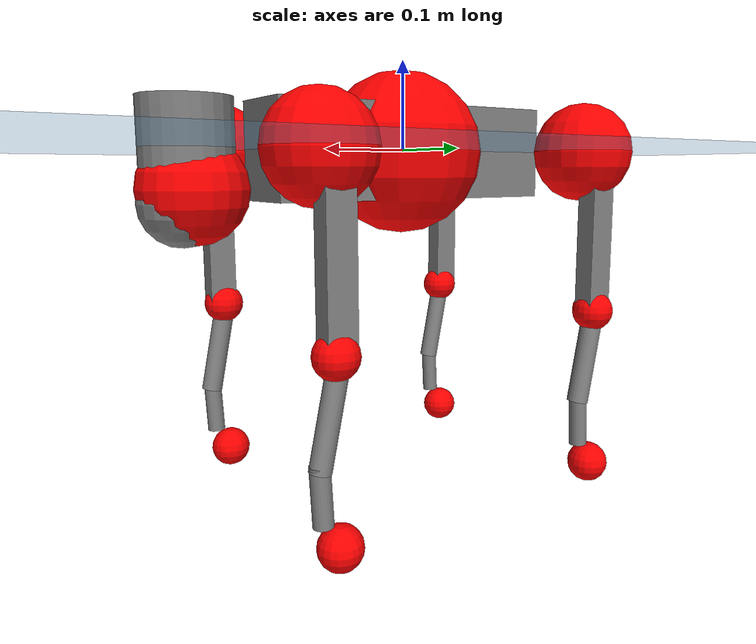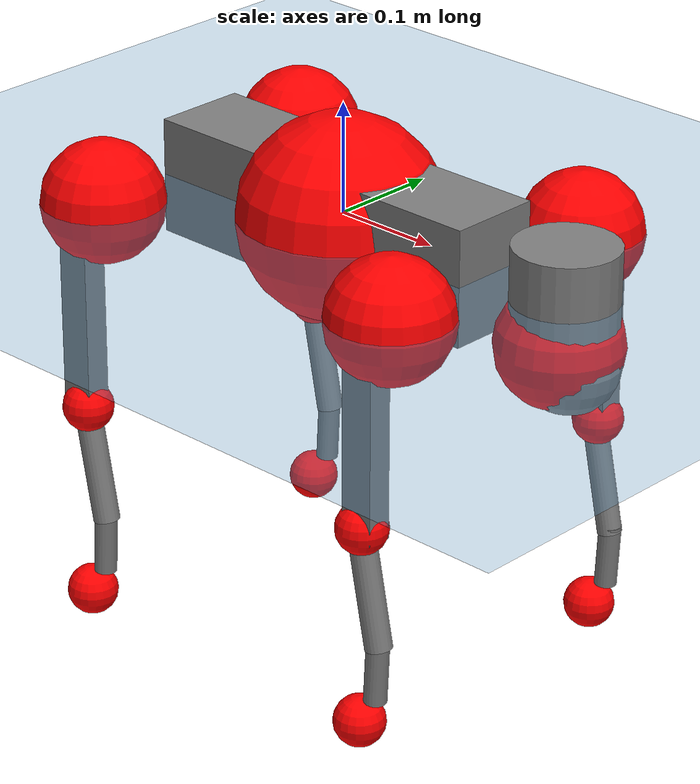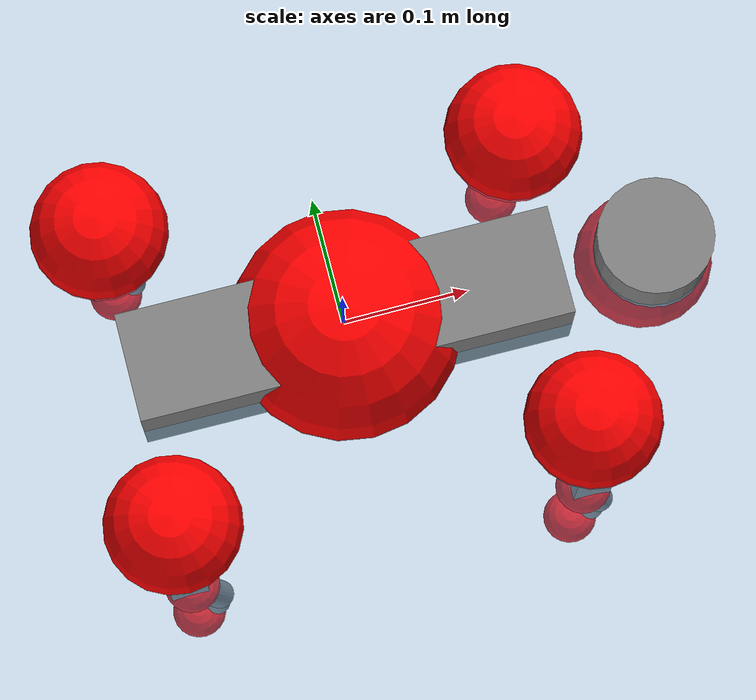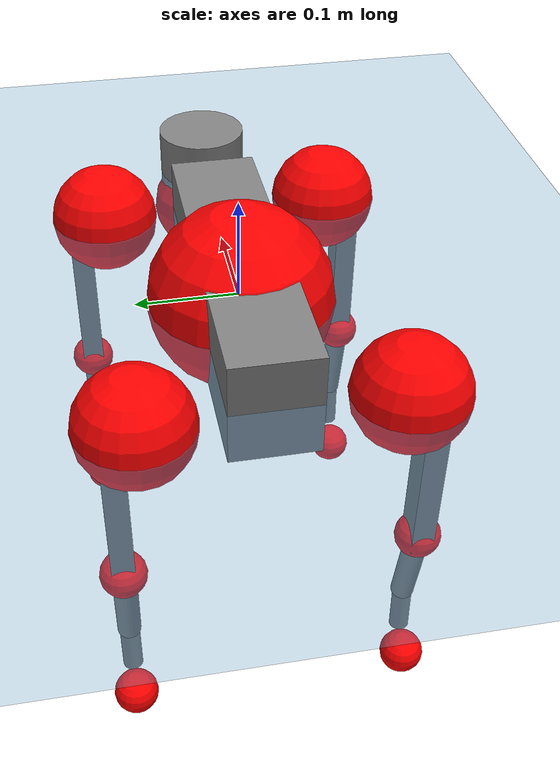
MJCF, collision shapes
<mujoco model="go2">
  <compiler angle="radian" assetdir="assets" balanceinertia="true" inertiafromgeom="false"/>

  <option timestep="0.005" density="1.2" viscosity="2e-05"/>

  <size nkey="1"/>

  <visual>
    <quality shadowsize="8192"/>
    <map shadowclip="0.5"/>
  </visual>

  <default>
    <default class="/">
      <geom contype="0" conaffinity="0" group="1" solref="-1000 -80"/>
      <site size="0.01 0.005 0.005" group="5"/>
      <general forcelimited="true" biastype="affine" gainprm="20" biasprm="0 -20 -0.5"/>
      <default class="go2">
        <joint armature="0.01" damping="0.01" frictionloss="0.2"/>
        <geom condim="1" margin="0.001"/>
        <default class="visual">
          <geom type="mesh" group="2"/>
        </default>
        <default class="collision">
          <geom group="3"/>
          <default class="foot">
            <geom size="0.022 0 0" condim="6" priority="1" friction="0.8 0.02 0.01" solimp="0.015 1 0.022"/>
          </default>
        </default>
        <default class="reward_collision_sphere">
          <geom group="5" rgba="1 0 0 1"/>
        </default>
      </default>
    </default>
  </default>

  <asset>
    <texture type="skybox" colorspace="auto" name="//unnamed_texture_0" builtin="gradient" rgb1="0.95 0.95 0.95" rgb2="0.95 0.95 0.95" width="100" height="600"/>
    <texture type="2d" colorspace="auto" name="texplane" builtin="checker" rgb1="0.345 0.575 0.748" rgb2="0.345 0.575 0.748" markrgb="1 1 1" width="512" height="512"/>
    <material name="MatPlane" class="/" texture="texplane" texuniform="true" texrepeat="2 2" specular="0.9"/>
    <material name="metal" class="/" rgba="0.9 0.95 0.95 1"/>
    <material name="black" class="/" rgba="0 0 0 1"/>
    <material name="white" class="/"/>
    <material name="gray" class="/" rgba="0.671705 0.692426 0.77427 1"/>
    <mesh name="base_0" class="/" file="base_0.obj"/>
    <mesh name="base_1" class="/" file="base_1.obj"/>
    <mesh name="base_2" class="/" file="base_2.obj"/>
    <mesh name="base_3" class="/" file="base_3.obj"/>
    <mesh name="base_4" class="/" file="base_4.obj"/>
    <mesh name="hip_0" class="/" file="hip_0.obj"/>
    <mesh name="hip_1" class="/" file="hip_1.obj"/>
    <mesh name="thigh_0" class="/" file="thigh_0.obj"/>
    <mesh name="thigh_1" class="/" file="thigh_1.obj"/>
    <mesh name="thigh_mirror_0" class="/" file="thigh_mirror_0.obj"/>
    <mesh name="thigh_mirror_1" class="/" file="thigh_mirror_1.obj"/>
    <mesh name="calf_0" class="/" file="calf_0.obj"/>
    <mesh name="calf_1" class="/" file="calf_1.obj"/>
    <mesh name="calf_mirror_0" class="/" file="calf_mirror_0.obj"/>
    <mesh name="calf_mirror_1" class="/" file="calf_mirror_1.obj"/>
    <mesh name="foot" class="/" file="foot.obj"/>
  </asset>

  <worldbody>
    <geom name="floor" class="/" size="100 100 0.125" type="plane" group="0" material="MatPlane"/>
    <light name="toplight_shadow" class="/" pos="0 0 5" dir="0.0990148 0.0990148 -0.990148" type="directional" ambient="0.04 0.04 0.04" diffuse="0.55 0.55 0.55" specular="0.12 0.12 0.12"/>
    <light name="toplight_fill" class="/" pos="0 0 5" dir="0.0990148 0.0990148 -0.990148" type="directional" castshadow="false" ambient="0.04 0.04 0.04" diffuse="0.3 0.3 0.3" specular="0.08 0.08 0.08"/>
    <body name="trunk" childclass="go2" pos="0.000696274 -0.00236153 -0.0022806" quat="0.999999 -1.94834e-05 0.000934014 -0.00070387">
      <inertial pos="0.0154785 0.000560243 -0.00262166" quat="-0.0121514 0.716962 -0.00681485 0.696973" mass="5.46938" diaginertia="0.0543198 0.104624 0.012159"/>
      <joint name="//unnamed_joint_0" type="free" armature="0" damping="0" frictionloss="0"/>
      <geom name="//unnamed_geom_1" class="visual" material="black" mesh="base_0"/>
      <geom name="//unnamed_geom_2" class="visual" material="black" mesh="base_1"/>
      <geom name="//unnamed_geom_3" class="visual" material="black" mesh="base_2"/>
      <geom name="//unnamed_geom_4" class="visual" material="white" mesh="base_3"/>
      <geom name="//unnamed_geom_5" class="visual" material="gray" mesh="base_4"/>
      <geom name="trunk_1" class="collision" size="0.172431 0.0428558 0.052252" type="box"/>
      <geom name="trunk_2" class="collision" size="0.0458351 0.0412516" pos="0.248354 0 0.00865998" type="cylinder"/>
      <geom name="trunk_3" class="collision" size="0.043085" pos="0.255325 0 -0.0519599"/>
      <geom name="//unnamed_geom_9" class="reward_collision_sphere" size="0.0916701"/>
      <geom name="//unnamed_geom_10" class="reward_collision_sphere" size="0.0550021" pos="0.243997 0 -0.0389699"/>
      <site name="imu" pos="-0.0208302 -0.00437817 0.0322283" size="0.00916701"/>
      <camera name="track" pos="0 -2.02537 0" quat="0.707107 0.707107 0 0" mode="trackcom"/>
      <camera name="ego_camera" pos="0.271882 0 0.0389699" quat="-0.5 -0.5 0.5 0.5"/>
      <body name="FL_hip" pos="0.16649 0.0457618 -0.00017856" quat="1 3.11306e-05 -1.23593e-05 3.08125e-05">
        <inertial pos="-0.00427049 0.000716085 -0.00123839" quat="0.495157 0.502282 0.509356 0.49304" mass="0.52465" diaginertia="0.000455939 0.00062266 0.000240437"/>
        <joint name="FL_hip_joint" pos="0 0 0" axis="0.99991 -0.00855488 -0.0103372" range="-1.10592 1.03183" armature="0.00958589" damping="0.0141187" frictionloss="0.18614"/>
        <geom name="//unnamed_geom_11" class="visual" material="metal" mesh="hip_0"/>
        <geom name="//unnamed_geom_12" class="visual" material="gray" mesh="hip_1"/>
        <geom name="//unnamed_geom_13" class="collision" size="0.0421683 0.018334" pos="0 0.081015 0" quat="0.707107 0.707107 0 0" type="cylinder"/>
        <geom name="//unnamed_geom_14" class="reward_collision_sphere" size="0.0550021" pos="0 0.0708881 0"/>
        <body name="FL_thigh" pos="0.00130975 0.0992705 0.000422663" quat="1 -0.000312865 0.000143102 0.000186306">
          <inertial pos="-0.00250856 -0.0235395 -0.0282291" quat="0.830226 0.0796711 -0.0324691 0.550748" mass="0.914507" diaginertia="0.00294912 0.00616606 0.000427919"/>
          <joint name="FL_thigh_joint" pos="0 0 0" axis="-0.00556095 0.99993 -0.0104748" stiffness="0.0162811" range="-1.61679 3.48504" armature="0.00888008" damping="0.0114798" frictionloss="0.158298"/>
          <geom name="//unnamed_geom_15" class="visual" material="metal" mesh="thigh_0"/>
          <geom name="//unnamed_geom_16" class="visual" material="gray" mesh="thigh_1"/>
          <geom name="//unnamed_geom_17" class="collision" size="0.0976287 0.0112296 0.0155839" pos="0 0 -0.0922288" quat="0.707107 0 0.707107 0" type="box"/>
          <body name="FL_calf" pos="0.00173142 0.000233449 -0.185443" quat="1 -0.000418614 -0.000140452 -6.69243e-05">
            <inertial pos="0.00473104 -0.00315592 -0.123717" quat="0.714117 0.0118924 -0.0099508 0.699854" mass="0.185634" diaginertia="0.00072677 0.00151427 2.51611e-05"/>
            <joint name="FL_calf_joint" pos="0 0 0" axis="-0.00139448 0.999998 0.00110792" stiffness="0.00997833" range="-2.74161 -0.807494" armature="0.00779177" damping="0.000466499" frictionloss="0.205438"/>
            <geom name="//unnamed_geom_18" class="visual" material="gray" mesh="calf_0"/>
            <geom name="//unnamed_geom_19" class="visual" material="black" mesh="calf_1"/>
            <geom name="FL_calf0" class="collision" size="0.0110004 0.0550021" pos="0.00697134 0 -0.0519599" quat="0.994493 0 -0.104807 0" type="cylinder"/>
            <geom name="//unnamed_geom_21" class="collision" size="0.0100837 0.0297928" pos="0.0174284 0 -0.128168" quat="0.999688 0 0.0249974 0" type="cylinder"/>
            <geom name="//unnamed_geom_22" class="visual" pos="0 0 -0.184458" quat="1 0 0 0" material="black" mesh="foot"/>
            <geom name="FL_foot" class="foot" size="0.0157152" pos="-0.00174284 0 -0.184458"/>
            <geom name="//unnamed_geom_24" class="reward_collision_sphere" size="0.0229175"/>
            <geom name="//unnamed_geom_25" class="reward_collision_sphere" size="0.0229175" pos="-0.00174284 0 -0.184458"/>
            <site name="FL_foot" class="foot" pos="-0.00174284 0 -0.184458" size="0.00916701"/>
          </body>
        </body>
      </body>
      <body name="FR_hip" pos="0.169138 -0.0494868 -0.00079052" quat="1 -0.000170487 -0.000259274 -9.83887e-05">
        <inertial pos="-0.00440077 0.000796597 -0.00287079" quat="0.49694 0.507306 0.498014 0.497668" mass="0.500013" diaginertia="0.000427845 0.00063513 0.000238648"/>
        <joint name="FR_hip_joint" pos="0 0 0" axis="0.999914 0.0129622 0.00219075" stiffness="0.00951487" range="-1.04835 1.07144" armature="0.00790566" damping="0.0148791" frictionloss="0.202541"/>
        <geom name="//unnamed_geom_26" class="visual" pos="0 1.27789e-09 5.48115e-08" quat="4.63268e-05 1 0 0" material="metal" mesh="hip_0"/>
        <geom name="//unnamed_geom_27" class="visual" pos="0 2.07162e-09 -1.3557e-07" quat="4.63268e-05 1 0 0" material="gray" mesh="hip_1"/>
        <geom name="//unnamed_geom_28" class="collision" size="0.0421683 0.018334" pos="0 -0.081015 0" quat="0.707107 0.707107 0 0" type="cylinder"/>
        <geom name="//unnamed_geom_29" class="reward_collision_sphere" size="0.0550021" pos="0 -0.0708881 0"/>
        <body name="FR_thigh" pos="-0.00180562 -0.0967652 0.00286835" quat="1 6.38501e-05 0.000210635 -9.33403e-06">
          <inertial pos="-0.000353836 0.0202507 -0.0281668" quat="0.545161 -0.0106719 0.0885379 0.833575" mass="0.905736" diaginertia="0.00288414 0.00619126 0.000425876"/>
          <joint name="FR_thigh_joint" pos="0 0 0" axis="-0.00079683 -0.999996 0.0026426" range="-3.47143 1.61475" armature="0.00890882" damping="0.013257" frictionloss="0.16002"/>
          <geom name="//unnamed_geom_30" class="visual" material="metal" mesh="thigh_mirror_0"/>
          <geom name="//unnamed_geom_31" class="visual" material="gray" mesh="thigh_mirror_1"/>
          <geom name="//unnamed_geom_32" class="collision" size="0.0976287 0.0112296 0.0155839" pos="0 0 -0.0922288" quat="0.707107 0 0.707107 0" type="box"/>
          <body name="FR_calf" pos="-0.00347261 9.63616e-06 -0.182953" quat="1 0.000445753 0.000133287 -0.000567693">
            <inertial pos="0.0029768 0.00303789 -0.122835" quat="0.696129 -0.0107974 -0.00494167 0.717819" mass="0.184342" diaginertia="0.000717058 0.00158596 2.48034e-05"/>
            <joint name="FR_calf_joint" pos="0 0 0" axis="-0.00345807 -0.999993 0.00155136" range="0.882462 2.75944" armature="0.00894346" damping="0.00482815" frictionloss="0.159649"/>
            <geom name="//unnamed_geom_33" class="visual" material="gray" mesh="calf_mirror_0"/>
            <geom name="//unnamed_geom_34" class="visual" material="black" mesh="calf_mirror_1"/>
            <geom name="FR_calf0" class="collision" size="0.0119171 0.0550021" pos="0.00871418 0 -0.0519599" quat="0.995004 0 -0.0998334 0" type="cylinder"/>
            <geom name="//unnamed_geom_36" class="collision" size="0.0100837 0.0297928" pos="0.0174284 0 -0.128168" quat="0.999688 0 0.0249974 0" type="cylinder"/>
            <geom name="//unnamed_geom_37" class="visual" pos="0 0 -0.184458" quat="1 0 0 0" material="black" mesh="foot"/>
            <geom name="FR_foot" class="foot" size="0.0210845" pos="-0.00174284 0 -0.184458"/>
            <geom name="//unnamed_geom_39" class="reward_collision_sphere" size="0.0229175"/>
            <geom name="//unnamed_geom_40" class="reward_collision_sphere" size="0.0229175" pos="-0.00174284 0 -0.184458"/>
            <site name="FR_foot" class="foot" pos="-0.00174284 0 -0.184458" size="0.00916701"/>
          </body>
        </body>
      </body>
      <body name="RL_hip" pos="-0.168791 0.0497977 -0.000422644" quat="1 1.48746e-05 -6.42159e-07 -2.34952e-05">
        <inertial pos="0.0058756 0.0011619 0.00255795" quat="0.505088 0.491832 0.500669 0.502313" mass="0.511263" diaginertia="0.000423248 0.000592233 0.000233618"/>
        <joint name="RL_hip_joint" pos="0 0 0" axis="-0.999774 0.0141388 -0.0158889" stiffness="0.000657143" range="-1.02737 0.991457" armature="0.00847283" damping="0.0141546" frictionloss="0.199644"/>
        <geom name="//unnamed_geom_41" class="visual" pos="-4.72113e-11 0 -9.25449e-09" quat="4.63268e-05 0 1 0" material="metal" mesh="hip_0"/>
        <geom name="//unnamed_geom_42" class="visual" pos="-7.65351e-11 0 -8.20742e-09" quat="4.63268e-05 0 1 0" material="gray" mesh="hip_1"/>
        <geom name="//unnamed_geom_43" class="collision" size="0.0421683 0.018334" pos="0 0.081015 0" quat="0.707107 0.707107 0 0" type="cylinder"/>
        <geom name="//unnamed_geom_44" class="reward_collision_sphere" size="0.0550021" pos="0 0.0708881 0"/>
        <body name="RL_thigh" pos="-0.000196583 0.0932839 0.00278526" quat="1 -9.93662e-05 -4.59224e-05 -8.72168e-05">
          <inertial pos="-0.00321883 -0.0240149 -0.0257449" quat="0.831142 0.0888615 -0.0126215 0.548768" mass="0.891685" diaginertia="0.00288535 0.00642688 0.000431719"/>
          <joint name="RL_thigh_joint" pos="0 0 0" axis="0.00419777 0.999983 0.00416673" range="-0.525495 4.55835" armature="0.0102481" damping="0.0173542" frictionloss="0.158529"/>
          <geom name="//unnamed_geom_45" class="visual" material="metal" mesh="thigh_0"/>
          <geom name="//unnamed_geom_46" class="visual" material="gray" mesh="thigh_1"/>
          <geom name="//unnamed_geom_47" class="collision" size="0.0976287 0.0112296 0.0155839" pos="0 0 -0.0922288" quat="0.707107 0 0.707107 0" type="box"/>
          <body name="RL_calf" pos="-0.00206061 -0.000376149 -0.183355" quat="0.999999 -0.00130331 0.000563569 -0.000310344">
            <inertial pos="0.00443721 0.000661821 -0.12212" quat="0.710002 0.00531602 -0.00400098 0.704169" mass="0.182299" diaginertia="0.00073541 0.00153307 2.55515e-05"/>
            <joint name="RL_calf_joint" pos="0 0 0" axis="0.000252232 0.999999 0.00128498" range="-2.73407 -0.844161" armature="0.00878646" damping="0.0136262" frictionloss="0.160726"/>
            <geom name="//unnamed_geom_48" class="visual" material="gray" mesh="calf_0"/>
            <geom name="//unnamed_geom_49" class="visual" material="black" mesh="calf_1"/>
            <geom name="RL_calf0" class="collision" size="0.0119171 0.0550021" pos="0.00871418 0 -0.0519599" quat="0.995004 0 -0.0998334 0" type="cylinder"/>
            <geom name="//unnamed_geom_51" class="collision" size="0.0100837 0.0297928" pos="0.0174284 0 -0.128168" quat="0.999688 0 0.0249974 0" type="cylinder"/>
            <geom name="//unnamed_geom_52" class="visual" pos="0 0 -0.184458" quat="1 0 0 0" material="black" mesh="foot"/>
            <geom name="RL_foot" class="foot" size="0.0179946" pos="-0.00174284 0 -0.184458"/>
            <geom name="//unnamed_geom_54" class="reward_collision_sphere" size="0.0229175"/>
            <geom name="//unnamed_geom_55" class="reward_collision_sphere" size="0.0229175" pos="-0.00174284 0 -0.184458"/>
            <site name="RL_foot" class="foot" pos="-0.00174284 0 -0.184458" size="0.00916701"/>
          </body>
        </body>
      </body>
      <body name="RR_hip" pos="-0.168124 -0.048316 0.000713317" quat="1 1.95695e-05 0.000259378 -0.000632072">
        <inertial pos="0.00386053 -0.00404261 0.000516405" quat="0.499096 0.498013 0.499093 0.503778" mass="0.502763" diaginertia="0.000427177 0.00063003 0.000221727"/>
        <joint name="RR_hip_joint" pos="0 0 0" axis="-0.999998 -0.00212308 7.98274e-05" stiffness="0.00201556" range="-1.06922 1.09394" armature="0.00930374" damping="0.00620426" frictionloss="0.206941"/>
        <geom name="//unnamed_geom_56" class="visual" pos="5.2102e-11 1.27789e-09 -6.4066e-08" quat="2.14617e-09 4.63268e-05 4.63268e-05 -1" material="metal" mesh="hip_0"/>
        <geom name="//unnamed_geom_57" class="visual" pos="6.4438e-11 2.07162e-09 1.27362e-07" quat="2.14617e-09 4.63268e-05 4.63268e-05 -1" material="gray" mesh="hip_1"/>
        <geom name="//unnamed_geom_58" class="collision" size="0.0421683 0.018334" pos="0 -0.081015 0" quat="0.707107 0.707107 0 0" type="cylinder"/>
        <geom name="//unnamed_geom_59" class="reward_collision_sphere" size="0.0550021" pos="0 -0.0708881 0"/>
        <body name="RR_thigh" pos="-0.00222149 -0.0955009 -0.0039293" quat="0.999999 -0.00115945 -0.000219665 0.000408717">
          <inertial pos="-0.00258763 0.0207961 -0.0274306" quat="0.550319 -0.0184015 0.0861343 0.830296" mass="0.929962" diaginertia="0.00305421 0.00617346 0.000423244"/>
          <joint name="RR_thigh_joint" pos="0 0 0" axis="-0.00453622 -0.999987 0.00229211" stiffness="0.00347947" range="-4.55667 0.504258" armature="0.00941933" damping="0.0159042" frictionloss="0.189861"/>
          <geom name="//unnamed_geom_60" class="visual" material="metal" mesh="thigh_mirror_0"/>
          <geom name="//unnamed_geom_61" class="visual" material="gray" mesh="thigh_mirror_1"/>
          <geom name="//unnamed_geom_62" class="collision" size="0.0976287 0.0112296 0.0155839" pos="0 0 -0.0922288" quat="0.707107 0 0.707107 0" type="box"/>
          <body name="RR_calf" pos="0.00294465 -0.000906297 -0.182909" quat="1 -9.53831e-05 0.000104466 2.94478e-05">
            <inertial pos="0.00261224 0.000696642 -0.123492" quat="0.703258 -0.00611218 0.00173458 0.710907" mass="0.192419" diaginertia="0.000772521 0.00162163 2.61343e-05"/>
            <joint name="RR_calf_joint" pos="0 0 0" axis="0.0035102 -0.999982 0.00494663" stiffness="0.00351359" range="0.850699 2.78005" armature="0.00927392" damping="0.0108132" frictionloss="0.208344"/>
            <geom name="//unnamed_geom_63" class="visual" material="gray" mesh="calf_mirror_0"/>
            <geom name="//unnamed_geom_64" class="visual" material="black" mesh="calf_mirror_1"/>
            <geom name="RR_calf0" class="collision" size="0.0119171 0.0550021" pos="0.00871418 0 -0.0519599" quat="0.995004 0 -0.0998334 0" type="cylinder"/>
            <geom name="//unnamed_geom_66" class="collision" size="0.0100837 0.0297928" pos="0.0174284 0 -0.128168" quat="0.999688 0 0.0249974 0" type="cylinder"/>
            <geom name="//unnamed_geom_67" class="visual" pos="0 0 -0.184458" quat="1 0 0 0" material="black" mesh="foot"/>
            <geom name="RR_foot" class="foot" size="0.0191944" pos="-0.00174284 0 -0.184458"/>
            <geom name="//unnamed_geom_69" class="reward_collision_sphere" size="0.0229175"/>
            <geom name="//unnamed_geom_70" class="reward_collision_sphere" size="0.0229175" pos="-0.00174284 0 -0.184458"/>
            <site name="RR_foot" class="foot" pos="-0.00174284 0 -0.184458" size="0.00916701"/>
          </body>
        </body>
      </body>
    </body>
  </worldbody>

  <contact>
    <pair class="/" geom1="floor" geom2="FL_foot" name="//unnamed_contact_0"/>
    <pair class="/" geom1="floor" geom2="FR_foot" name="//unnamed_contact_1"/>
    <pair class="/" geom1="floor" geom2="RL_foot" name="//unnamed_contact_2"/>
    <pair class="/" geom1="floor" geom2="RR_foot" name="//unnamed_contact_3"/>
  </contact>

  <actuator>
    <general name="FL_hip" class="/" joint="FL_hip_joint" forcerange="-23.9659 23.9659" gainprm="18.6414" biasprm="0 -18.6414 -0.449373"/>
    <general name="FL_thigh" class="/" joint="FL_thigh_joint" forcerange="-21.6397 21.6397" gainprm="18.6414" biasprm="0 -18.6414 -0.449373"/>
    <general name="FL_calf" class="/" joint="FL_calf_joint" forcerange="-39.9168 39.9168" gainprm="18.6414" biasprm="0 -18.6414 -0.449373"/>
    <general name="FR_hip" class="/" joint="FR_hip_joint" forcerange="-19.4243 19.4243" gainprm="18.6414" biasprm="0 -18.6414 -0.449373"/>
    <general name="FR_thigh" class="/" joint="FR_thigh_joint" forcerange="-22.4684 22.4684" gainprm="18.6414" biasprm="0 -18.6414 -0.449373"/>
    <general name="FR_calf" class="/" joint="FR_calf_joint" forcerange="-38.2792 38.2792" gainprm="18.6414" biasprm="0 -18.6414 -0.449373"/>
    <general name="RL_hip" class="/" joint="RL_hip_joint" forcerange="-19.7975 19.7975" gainprm="18.6414" biasprm="0 -18.6414 -0.449373"/>
    <general name="RL_thigh" class="/" joint="RL_thigh_joint" forcerange="-22.4782 22.4782" gainprm="18.6414" biasprm="0 -18.6414 -0.449373"/>
    <general name="RL_calf" class="/" joint="RL_calf_joint" forcerange="-45.4127 45.4127" gainprm="18.6414" biasprm="0 -18.6414 -0.449373"/>
    <general name="RR_hip" class="/" joint="RR_hip_joint" forcerange="-19.4747 19.4747" gainprm="18.6414" biasprm="0 -18.6414 -0.449373"/>
    <general name="RR_thigh" class="/" joint="RR_thigh_joint" forcerange="-23.8053 23.8053" gainprm="18.6414" biasprm="0 -18.6414 -0.449373"/>
    <general name="RR_calf" class="/" joint="RR_calf_joint" forcerange="-42.3704 42.3704" gainprm="18.6414" biasprm="0 -18.6414 -0.449373"/>
  </actuator>

  <sensor>
    <gyro site="imu" name="imu_angular_velocity"/>
    <velocimeter site="imu" name="imu_linear_velocity"/>
    <framelinvel objtype="site" objname="FL_foot" name="FL_foot_global_linear_velocity"/>
    <framelinvel objtype="site" objname="FR_foot" name="FR_foot_global_linear_velocity"/>
    <framelinvel objtype="site" objname="RL_foot" name="RL_foot_global_linear_velocity"/>
    <framelinvel objtype="site" objname="RR_foot" name="RR_foot_global_linear_velocity"/>
  </sensor>

  <keyframe>
    <key name="home" qpos="0 0 0.325 1 0 0 0 0.1 0.8 -1.5 -0.1 -0.8 1.5 -0.1 0.8 -1.5 0.1 -0.8 1.5"/>
  </keyframe>
</mujoco>
